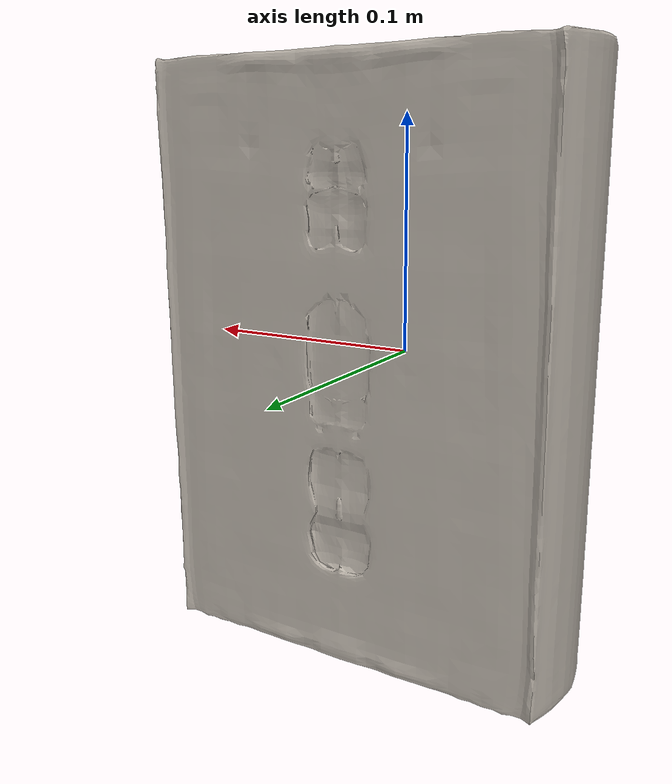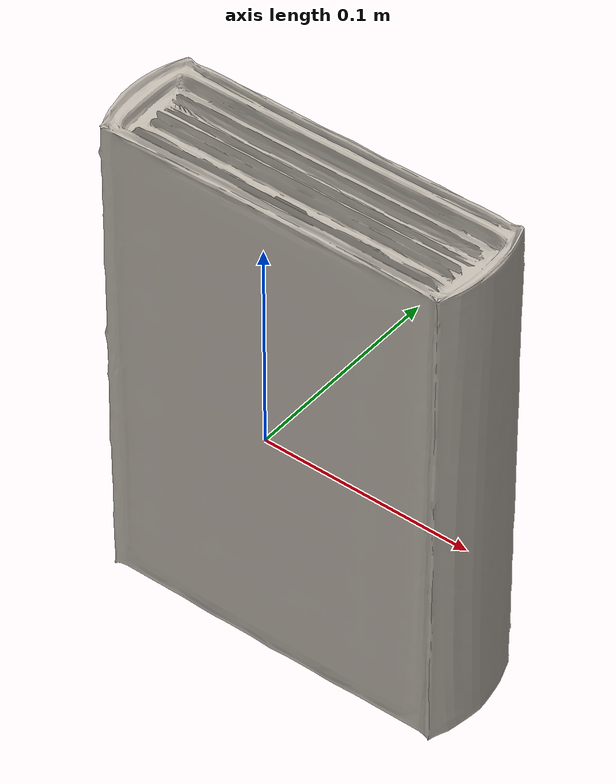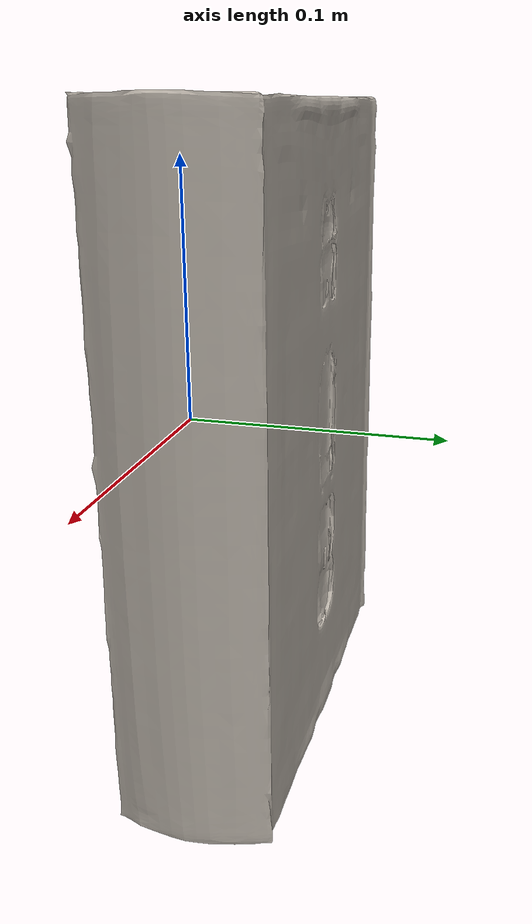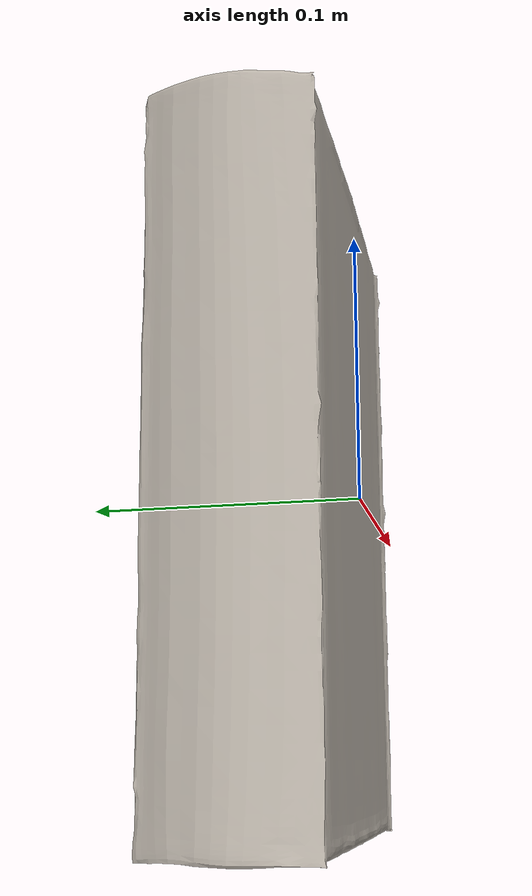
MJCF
<mujoco model="043_book">
  <asset>
    <mesh name="043_book_visual" file="043_book_visual.obj"/>
    <mesh name="043_book_collision" file="043_book_collision.stl"/>
    <texture name="043_book_tex" type="2d" file="043_book.png"/>
    <material name="043_book_mat" texture="043_book_tex"/>
  </asset>
  <worldbody>
    <body name="043_book" pos="0 0 0">
      <freejoint/>
      <geom type="mesh" mesh="043_book_visual" material="043_book_mat"
            mass="1.06" contype="0" conaffinity="0"/>
      <geom type="mesh" mesh="043_book_collision" mass="0"
            contype="1" conaffinity="1"
            friction="0.5 .005 0.01"
            rgba="0 0 0 0"/>
    </body>
  </worldbody>
</mujoco>
